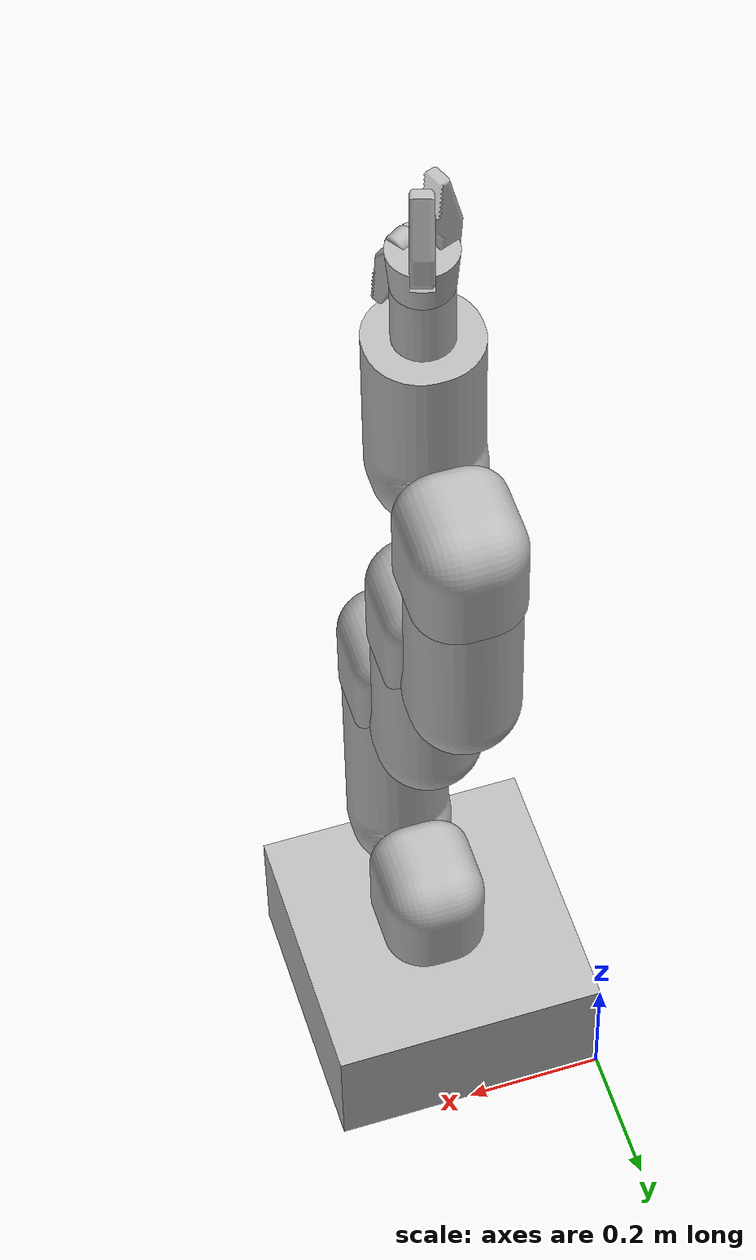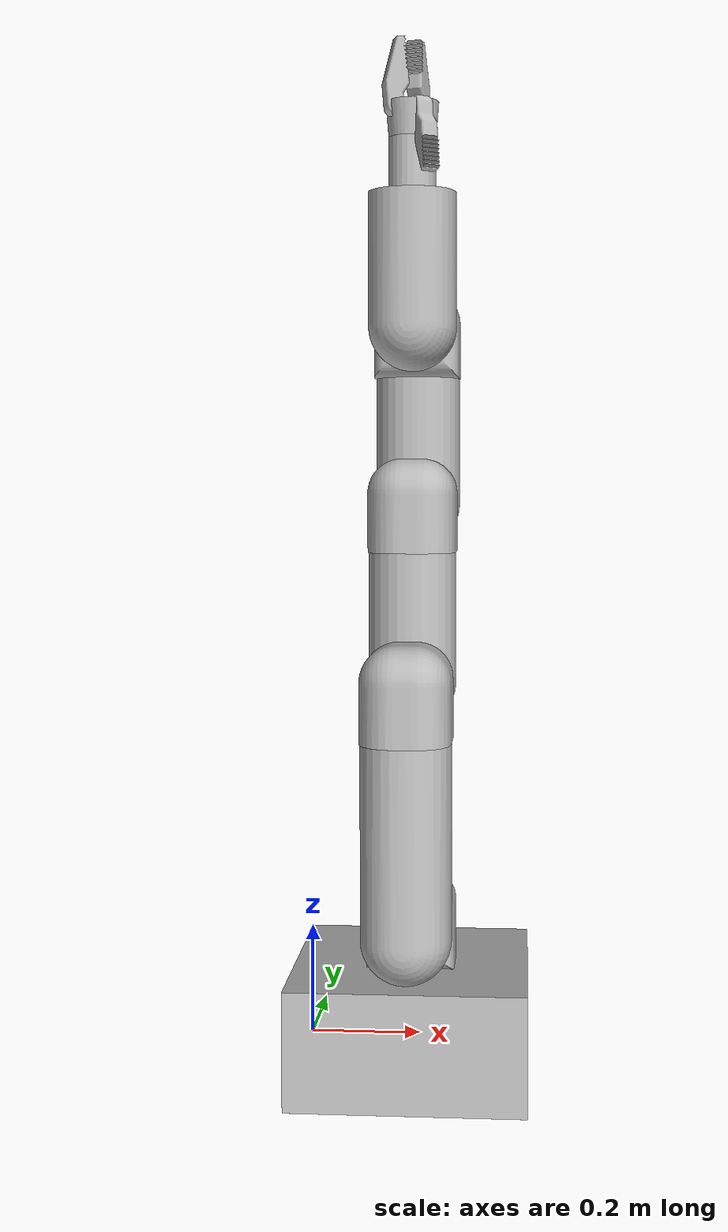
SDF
<sdf version='1.7'>
  <model name='robot_arm'>
    <link name='base_link'>
      <inertial>
        <pose>0 0 0 0 -0 0</pose>
        <mass>1e+06</mass>
        <inertia>
          <ixx>0.03</ixx>
          <ixy>0</ixy>
          <ixz>0</ixz>
          <iyy>0.03</iyy>
          <iyz>0</iyz>
          <izz>0.03</izz>
        </inertia>
      </inertial>
      <collision name='base_link_collision'>
        <pose>0 0 0 0 -0 0</pose>
        <geometry>
          <mesh>
            <scale>1 1 1</scale>
            <uri>model://robot_arm_gazebo/models/base_link.STL</uri>
          </mesh>
        </geometry>
      </collision>
      <visual name='base_link_visual'>
        <pose>0 0 0 0 -0 0</pose>
        <geometry>
          <mesh>
            <scale>1 1 1</scale>
            <uri>model://robot_arm_gazebo/models/base_link.STL</uri>
          </mesh>
        </geometry>
      </visual>
    </link>
    <joint name='base_to_bottom_joint' type='revolute'>
      <pose relative_to='base_link'>0.2 -0.2 0.2 -1.5708 -0 -1.5708</pose>
      <parent>base_link</parent>
      <child>bottom_joint</child>
      <axis>
        <xyz>0 1 0</xyz>
        <limit>
          <effort>1000</effort>
          <velocity>0.2</velocity>
          <lower>-1e+16</lower>
          <upper>1e+16</upper>
        </limit>
        <dynamics>
          <spring_reference>0</spring_reference>
          <spring_stiffness>0</spring_stiffness>
        </dynamics>
      </axis>
    </joint>
    <link name='bottom_joint'>
      <pose relative_to='base_to_bottom_joint'>0 0 0 0 -0 0</pose>
      <inertial>
        <pose>0.014131 -0.0797 0 0 -0 0</pose>
        <mass>3.2015</mass>
        <inertia>
          <ixx>0.010208</ixx>
          <ixy>0.00023255</ixy>
          <ixz>-3.1585e-08</ixz>
          <iyy>0.013642</iyy>
          <iyz>-2.3611e-08</iyz>
          <izz>0.013754</izz>
        </inertia>
      </inertial>
      <collision name='bottom_joint_collision'>
        <pose>0 0 0 0 -0 0</pose>
        <geometry>
          <mesh>
            <scale>1 1 1</scale>
            <uri>model://robot_arm_gazebo/models/bottom_joint.STL</uri>
          </mesh>
        </geometry>
      </collision>
      <visual name='bottom_joint_visual'>
        <pose>0 0 0 0 -0 0</pose>
        <geometry>
          <mesh>
            <scale>1 1 1</scale>
            <uri>model://robot_arm_gazebo/models/bottom_joint.STL</uri>
          </mesh>
        </geometry>
      </visual>
    </link>
    <joint name='bottom_joint_to_bottom_arm' type='revolute'>
      <pose relative_to='bottom_joint'>0.08 -0.08 0 0 0 -3.14159</pose>
      <parent>bottom_joint</parent>
      <child>bottom_arm</child>
      <axis>
        <xyz>1 0 0</xyz>
        <limit>
          <lower>-1.5707</lower>
          <upper>1.5707</upper>
          <effort>1000</effort>
          <velocity>0.2</velocity>
        </limit>
        <dynamics>
          <spring_reference>0</spring_reference>
          <spring_stiffness>0</spring_stiffness>
        </dynamics>
      </axis>
    </joint>
    <link name='bottom_arm'>
      <pose relative_to='bottom_joint_to_bottom_arm'>0 0 0 0 -0 0</pose>
      <inertial>
        <pose>-0.076343 0.1498 -0 0 -0 0</pose>
        <mass>6.9965</mass>
        <inertia>
          <ixx>0.10239</ixx>
          <ixy>-0.0012724</ixy>
          <ixz>3.2569e-08</ixz>
          <iyy>0.019404</iyy>
          <iyz>-2.5392e-08</iyz>
          <izz>0.10187</izz>
        </inertia>
      </inertial>
      <collision name='bottom_arm_collision'>
        <pose>0 0 0 0 -0 0</pose>
        <geometry>
          <mesh>
            <scale>1 1 1</scale>
            <uri>model://robot_arm_gazebo/models/bottom_arm.STL</uri>
          </mesh>
        </geometry>
      </collision>
      <visual name='bottom_arm_visual'>
        <pose>0 0 0 0 -0 0</pose>
        <geometry>
          <mesh>
            <scale>1 1 1</scale>
            <uri>model://robot_arm_gazebo/models/bottom_arm.STL</uri>
          </mesh>
        </geometry>
      </visual>
    </link>
    <joint name='bottom_arm_to_middle_joint' type='revolute'>
      <pose relative_to='bottom_arm'>-0.075 0.325 0 0 -0 0</pose>
      <parent>bottom_arm</parent>
      <child>middle_joint</child>
      <axis>
        <xyz>0 1 0</xyz>
        <limit>
          <effort>1000</effort>
          <velocity>0.2</velocity>
          <lower>-1e+16</lower>
          <upper>1e+16</upper>
        </limit>
        <dynamics>
          <spring_reference>0</spring_reference>
          <spring_stiffness>0</spring_stiffness>
        </dynamics>
      </axis>
    </joint>
    <link name='middle_joint'>
      <pose relative_to='bottom_arm_to_middle_joint'>0 0 0 0 -0 0</pose>
      <inertial>
        <pose>0.014131 0.0797 -0 0 -0 0</pose>
        <mass>3.20147</mass>
        <inertia>
          <ixx>0.0102082</ixx>
          <ixy>-0.000232552</ixy>
          <ixz>3.15854e-08</ixz>
          <iyy>0.0136416</iyy>
          <iyz>-2.36107e-08</iyz>
          <izz>0.0137544</izz>
        </inertia>
      </inertial>
      <collision name='middle_joint_collision'>
        <pose>0 0 0 0 -0 0</pose>
        <geometry>
          <mesh>
            <scale>1 1 1</scale>
            <uri>model://robot_arm_gazebo/models/middle_joint.STL</uri>
          </mesh>
        </geometry>
      </collision>
      <visual name='middle_joint_visual'>
        <pose>0 0 0 0 -0 0</pose>
        <geometry>
          <mesh>
            <scale>1 1 1</scale>
            <uri>model://robot_arm_gazebo/models/middle_joint.STL</uri>
          </mesh>
        </geometry>
      </visual>
    </link>
    <joint name='middle_joint_to_middle_arm' type='revolute'>
      <pose relative_to='middle_joint'>0.08 0.08 0 0 0 -3.14159</pose>
      <parent>middle_joint</parent>
      <child>middle_arm</child>
      <axis>
        <xyz>1 0 0</xyz>
        <limit>
          <lower>-1e+16</lower>
          <upper>1e+16</upper>
        </limit>
        <dynamics>
          <spring_reference>0</spring_reference>
          <spring_stiffness>0</spring_stiffness>
        </dynamics>
      </axis>
    </joint>
    <link name='middle_arm'>
      <pose relative_to='middle_joint_to_middle_arm'>0 0 0 0 -0 0</pose>
      <inertial>
        <pose>-0.076818 -0.099322 0 0 -0 0</pose>
        <mass>5.1672</mass>
        <inertia>
          <ixx>0.046808</ixx>
          <ixy>0.00079804</ixy>
          <ixz>-9.6714e-08</ixz>
          <iyy>0.014071</iyy>
          <iyz>-6.9812e-08</iyz>
          <izz>0.046281</izz>
        </inertia>
      </inertial>
      <collision name='middle_arm_collision'>
        <pose>0 0 0 0 -0 0</pose>
        <geometry>
          <mesh>
            <scale>1 1 1</scale>
            <uri>model://robot_arm_gazebo/models/middle_arm.STL</uri>
          </mesh>
        </geometry>
      </collision>
      <visual name='middle_arm_visual'>
        <pose>0 0 0 0 -0 0</pose>
        <geometry>
          <mesh>
            <scale>1 1 1</scale>
            <uri>model://robot_arm_gazebo/models/middle_arm.STL</uri>
          </mesh>
        </geometry>
      </visual>
    </link>
    <joint name='middle_arm_to_upper_joint' type='revolute'>
      <pose relative_to='middle_arm'>-0.075 -0.225 0 0 0 -3.14159</pose>
      <parent>middle_arm</parent>
      <child>upper_joint</child>
      <axis>
        <xyz>0 1 0</xyz>
        <limit>
          <lower>-1e+16</lower>
          <upper>1e+16</upper>
        </limit>
        <dynamics>
          <spring_reference>0</spring_reference>
          <spring_stiffness>0</spring_stiffness>
        </dynamics>
      </axis>
    </joint>
    <link name='upper_joint'>
      <pose relative_to='middle_arm_to_upper_joint'>0 0 0 0 -0 0</pose>
      <inertial>
        <pose>0.014131 0.0797 -0 0 -0 0</pose>
        <mass>3.20147</mass>
        <inertia>
          <ixx>0.0102082</ixx>
          <ixy>-0.000232552</ixy>
          <ixz>3.15854e-08</ixz>
          <iyy>0.0136416</iyy>
          <iyz>-2.36107e-08</iyz>
          <izz>0.0137544</izz>
        </inertia>
      </inertial>
      <collision name='upper_joint_collision'>
        <pose>0 0 0 0 -0 0</pose>
        <geometry>
          <mesh>
            <scale>1 1 1</scale>
            <uri>model://robot_arm_gazebo/models/upper_joint.STL</uri>
          </mesh>
        </geometry>
      </collision>
      <visual name='upper_joint_visual'>
        <pose>0 0 0 0 -0 0</pose>
        <geometry>
          <mesh>
            <scale>1 1 1</scale>
            <uri>model://robot_arm_gazebo/models/upper_joint.STL</uri>
          </mesh>
        </geometry>
      </visual>
    </link>
    <joint name='upper_joint_to_upper_arm' type='revolute'>
      <pose relative_to='upper_joint'>0.08 0.08 0 0 0 -3.14159</pose>
      <parent>upper_joint</parent>
      <child>upper_arm</child>
      <axis>
        <xyz>1 0 0</xyz>
        <limit>
          <lower>-1e+16</lower>
          <upper>1e+16</upper>
        </limit>
        <dynamics>
          <spring_reference>0</spring_reference>
          <spring_stiffness>0</spring_stiffness>
        </dynamics>
      </axis>
    </joint>
    <link name='upper_arm'>
      <pose relative_to='upper_joint_to_upper_arm'>0 0 0 0 -0 0</pose>
      <inertial>
        <pose>-0.076818 -0.099322 0 0 -0 0</pose>
        <mass>5.1672</mass>
        <inertia>
          <ixx>0.046808</ixx>
          <ixy>0.00079804</ixy>
          <ixz>-9.6714e-08</ixz>
          <iyy>0.014071</iyy>
          <iyz>-6.9812e-08</iyz>
          <izz>0.046281</izz>
        </inertia>
      </inertial>
      <collision name='upper_arm_collision'>
        <pose>0 0 0 0 -0 0</pose>
        <geometry>
          <mesh>
            <scale>1 1 1</scale>
            <uri>model://robot_arm_gazebo/models/upper_arm.STL</uri>
          </mesh>
        </geometry>
      </collision>
      <visual name='upper_arm_visual'>
        <pose>0 0 0 0 -0 0</pose>
        <geometry>
          <mesh>
            <scale>1 1 1</scale>
            <uri>model://robot_arm_gazebo/models/upper_arm.STL</uri>
          </mesh>
        </geometry>
      </visual>
    </link>
    <joint name='upper_arm_to_grabber_joint' type='revolute'>
      <pose relative_to='upper_arm'>-0.075 -0.225 0 0 -0 0</pose>
      <parent>upper_arm</parent>
      <child>grabber_joint</child>
      <axis>
        <xyz>0 1 0</xyz>
        <limit>
          <lower>-1e+16</lower>
          <upper>1e+16</upper>
        </limit>
        <dynamics>
          <spring_reference>0</spring_reference>
          <spring_stiffness>0</spring_stiffness>
        </dynamics>
      </axis>
    </joint>
    <link name='grabber_joint'>
      <pose relative_to='upper_arm_to_grabber_joint'>0 0 0 0 -0 0</pose>
      <inertial>
        <pose>0.014131 -0.0797 0 0 -0 0</pose>
        <mass>3.2015</mass>
        <inertia>
          <ixx>0.010208</ixx>
          <ixy>0.00023255</ixy>
          <ixz>-3.1585e-08</ixz>
          <iyy>0.013642</iyy>
          <iyz>-2.3611e-08</iyz>
          <izz>0.013754</izz>
        </inertia>
      </inertial>
      <collision name='grabber_joint_collision'>
        <pose>0 0 0 0 -0 0</pose>
        <geometry>
          <mesh>
            <scale>1 1 1</scale>
            <uri>model://robot_arm_gazebo/models/grabber_joint.STL</uri>
          </mesh>
        </geometry>
      </collision>
      <visual name='grabber_joint_visual'>
        <pose>0 0 0 0 -0 0</pose>
        <geometry>
          <mesh>
            <scale>1 1 1</scale>
            <uri>model://robot_arm_gazebo/models/grabber_joint.STL</uri>
          </mesh>
        </geometry>
      </visual>
    </link>
    <joint name='grabber_joint_to_grabber_arm' type='revolute'>
      <pose relative_to='grabber_joint'>0.08 -0.08 0 0 0 -3.14159</pose>
      <parent>grabber_joint</parent>
      <child>grabber_arm</child>
      <axis>
        <xyz>1 0 0</xyz>
        <limit>
          <lower>-1e+16</lower>
          <upper>1e+16</upper>
        </limit>
        <dynamics>
          <spring_reference>0</spring_reference>
          <spring_stiffness>0</spring_stiffness>
        </dynamics>
      </axis>
    </joint>
    <link name='grabber_arm'>
      <pose relative_to='grabber_joint_to_grabber_arm'>0 0 0 0 -0 0</pose>
      <inertial>
        <pose>-0.077322 0.07839 -1e-06 0 -0 0</pose>
        <mass>4.0448</mass>
        <inertia>
          <ixx>0.033872</ixx>
          <ixy>-0.00060138</ixy>
          <ixz>1.3006e-07</ixz>
          <iyy>0.013101</iyy>
          <iyz>-6.6854e-08</iyz>
          <izz>0.03334</izz>
        </inertia>
      </inertial>
      <collision name='grabber_arm_collision'>
        <pose>0 0 0 0 -0 0</pose>
        <geometry>
          <mesh>
            <scale>1 1 1</scale>
            <uri>model://robot_arm_gazebo/models/grabber_arm.STL</uri>
          </mesh>
        </geometry>
      </collision>
      <visual name='grabber_arm_visual'>
        <pose>0 0 0 0 -0 0</pose>
        <geometry>
          <mesh>
            <scale>1 1 1</scale>
            <uri>model://robot_arm_gazebo/models/grabber_arm.STL</uri>
          </mesh>
        </geometry>
      </visual>
    </link>
    <joint name='grabber_arm_to_grabber_piston' type='prismatic'>
      <pose relative_to='grabber_arm'>-0.075 0.1173 0 -3.14159 -0.006183 -3.14159</pose>
      <parent>grabber_arm</parent>
      <child>grabber_piston</child>
      <axis>
        <xyz>0 1 0</xyz>
        <limit>
          <lower>-0.055</lower>
          <upper>0.08</upper>
          <effort>1000</effort>
          <velocity>0.2</velocity>
        </limit>
        <dynamics>
          <spring_reference>0</spring_reference>
          <spring_stiffness>0</spring_stiffness>
        </dynamics>
      </axis>
    </joint>
    <link name='grabber_piston'>
      <pose relative_to='grabber_arm_to_grabber_piston'>0 0 0 0 -0 0</pose>
      <inertial>
        <pose>0 0.10268 -0 0 -0 0</pose>
        <mass>1.0304</mass>
        <inertia>
          <ixx>0.0040532</ixx>
          <ixy>-8.5736e-19</ixy>
          <ixz>-6.7763e-21</ixz>
          <iyy>0.00080927</iyy>
          <iyz>-2.6904e-19</iyz>
          <izz>0.0040532</izz>
        </inertia>
      </inertial>
      <collision name='grabber_piston_collision'>
        <pose>0 0 0 0 -0 0</pose>
        <geometry>
          <mesh>
            <scale>1 1 1</scale>
            <uri>model://robot_arm_gazebo/models/grabber_piston.STL</uri>
          </mesh>
        </geometry>
      </collision>
      <visual name='grabber_piston_visual'>
        <pose>0 0 0 0 -0 0</pose>
        <geometry>
          <mesh>
            <scale>1 1 1</scale>
            <uri>model://robot_arm_gazebo/models/grabber_piston.STL</uri>
          </mesh>
        </geometry>
      </visual>
    </link>
    <joint name='grabber_piston_to_grabber_hand' type='revolute'>
      <pose relative_to='grabber_piston'>0 0.2 0 0 -1.162 0</pose>
      <parent>grabber_piston</parent>
      <child>grabber_hand</child>
      <axis>
        <xyz>0 1 0</xyz>
        <limit>
          <lower>-1e+16</lower>
          <upper>1e+16</upper>
        </limit>
        <dynamics>
          <spring_reference>0</spring_reference>
          <spring_stiffness>0</spring_stiffness>
        </dynamics>
      </axis>
    </joint>
    <link name='grabber_hand'>
      <pose relative_to='grabber_piston_to_grabber_hand'>0 0 0 0 -0 0</pose>
      <inertial>
        <pose>-0.000267 0.031012 0.0003 0 -0 0</pose>
        <mass>0.27089</mass>
        <inertia>
          <ixx>0.00021136</ixx>
          <ixy>8.8018e-07</ixy>
          <ixz>-3.3493e-06</ixz>
          <iyy>0.00026578</iyy>
          <iyz>-9.9051e-07</iyz>
          <izz>0.00021215</izz>
        </inertia>
      </inertial>
      <collision name='grabber_hand_collision'>
        <pose>0 0 0 0 -0 0</pose>
        <geometry>
          <mesh>
            <scale>1 1 1</scale>
            <uri>model://robot_arm_gazebo/models/grabber_hand.STL</uri>
          </mesh>
        </geometry>
      </collision>
      <visual name='grabber_hand_visual'>
        <pose>0 0 0 0 -0 0</pose>
        <geometry>
          <mesh>
            <scale>1 1 1</scale>
            <uri>model://robot_arm_gazebo/models/grabber_hand.STL</uri>
          </mesh>
        </geometry>
      </visual>
    </link>
    <joint name='grabber_hand_to_finger1' type='revolute'>
      <pose relative_to='grabber_hand'>-0.004968 0.05 -0.032044 -0.51216 -1.3941 0.51889</pose>
      <parent>grabber_hand</parent>
      <child>finger1</child>
      <axis>
        <xyz>0 0 1</xyz>
        <limit>
          <lower>3.3</lower>
          <upper>4.71239</upper>
          <effort>1000</effort>
          <velocity>0.2</velocity>
        </limit>
        <dynamics>
          <spring_reference>0</spring_reference>
          <spring_stiffness>0</spring_stiffness>
        </dynamics>
      </axis>
    </joint>
    <link name='finger1'>
      <pose relative_to='grabber_hand_to_finger1'>0 0 0 0 -0 0</pose>
      <inertial>
        <pose>-0.015717 -0.04775 -0 0 -0 0</pose>
        <mass>0.0988537</mass>
        <inertia>
          <ixx>9.50543e-05</ixx>
          <ixy>-2.91256e-05</ixy>
          <ixz>-3.0888e-11</ixz>
          <iyy>2.62005e-05</iyy>
          <iyz>-1.01748e-10</iyz>
          <izz>0.000107034</izz>
        </inertia>
      </inertial>
      <collision name='finger1_collision'>
        <pose>0 0 0 0 -0 0</pose>
        <geometry>
          <mesh>
            <scale>1 1 1</scale>
            <uri>model://robot_arm_gazebo/models/finger1.STL</uri>
          </mesh>
        </geometry>
      </collision>
      <visual name='finger1_visual'>
        <pose>0 0 0 0 -0 0</pose>
        <geometry>
          <mesh>
            <scale>1 1 1</scale>
            <uri>model://robot_arm_gazebo/models/finger1.STL</uri>
          </mesh>
        </geometry>
      </visual>
    </link>
    <joint name='grabber_hand_to_finger2' type='revolute'>
      <pose relative_to='grabber_hand'>0 0.05 0 3.1384 0.036009 3.0543</pose>
      <parent>grabber_hand</parent>
      <child>finger2</child>
      <axis>
        <xyz>0 0 1</xyz>
        <limit>
          <lower>0</lower>
          <upper>1.4835</upper>
          <effort>1000</effort>
          <velocity>0.2</velocity>
        </limit>
        <dynamics>
          <spring_reference>0</spring_reference>
          <spring_stiffness>0</spring_stiffness>
        </dynamics>
      </axis>
    </joint>
    <link name='finger2'>
      <pose relative_to='grabber_hand_to_finger2'>0 0 0 0 -0 0</pose>
      <inertial>
        <pose>-0.025116 0.05258 -0 0 -0 0</pose>
        <mass>0.0988538</mass>
        <inertia>
          <ixx>0.00010294</ixx>
          <ixy>-1.55944e-05</ixy>
          <ixz>-1.6117e-11</ixz>
          <iyy>1.83152e-05</iyy>
          <iyz>1.07014e-10</iyz>
          <izz>0.000107034</izz>
        </inertia>
      </inertial>
      <collision name='finger2_collision'>
        <pose>0 0 0 0 -0 0</pose>
        <geometry>
          <mesh>
            <scale>1 1 1</scale>
            <uri>model://robot_arm_gazebo/models/finger2.STL</uri>
          </mesh>
        </geometry>
      </collision>
      <visual name='finger2_visual'>
        <pose>0 0 0 0 -0 0</pose>
        <geometry>
          <mesh>
            <scale>1 1 1</scale>
            <uri>model://robot_arm_gazebo/models/finger2.STL</uri>
          </mesh>
        </geometry>
      </visual>
    </link>
    <joint name='grabber_hand_to_finger3' type='revolute'>
      <pose relative_to='grabber_hand'>0.030598 0.05 0.051139 0 0.84423 0</pose>
      <parent>grabber_hand</parent>
      <child>finger3</child>
      <axis>
        <xyz>0 0 1</xyz>
        <limit>
          <lower>0</lower>
          <upper>1.5708</upper>
          <effort>1000</effort>
          <velocity>0.2</velocity>
        </limit>
        <dynamics>
          <spring_reference>0</spring_reference>
          <spring_stiffness>0</spring_stiffness>
        </dynamics>
      </axis>
    </joint>
    <link name='finger3'>
      <pose relative_to='grabber_hand_to_finger3'>0 0 0 0 -0 0</pose>
      <inertial>
        <pose>-0.007342 0.049754 -0.056843 0 -0 0</pose>
        <mass>0.0988537</mass>
        <inertia>
          <ixx>0.00010294</ixx>
          <ixy>-1.55944e-05</ixy>
          <ixz>1.38405e-11</ixz>
          <iyy>1.83152e-05</iyy>
          <iyz>1.10521e-10</iyz>
          <izz>0.000107034</izz>
        </inertia>
      </inertial>
      <collision name='finger3_collision'>
        <pose>0 0 0 0 -0 0</pose>
        <geometry>
          <mesh>
            <scale>1 1 1</scale>
            <uri>model://robot_arm_gazebo/models/finger3.STL</uri>
          </mesh>
        </geometry>
      </collision>
      <visual name='finger3_visual'>
        <pose>0 0 0 0 -0 0</pose>
        <geometry>
          <mesh>
            <scale>1 1 1</scale>
            <uri>model://robot_arm_gazebo/models/finger3.STL</uri>
          </mesh>
        </geometry>
      </visual>
    </link>
    <static>0</static>
    <plugin name='gazebo_ros_control' filename='libgazebo_ros_control.so'>
      <robotNamespace>/</robotNamespace>
    </plugin>
  </model>
</sdf>
